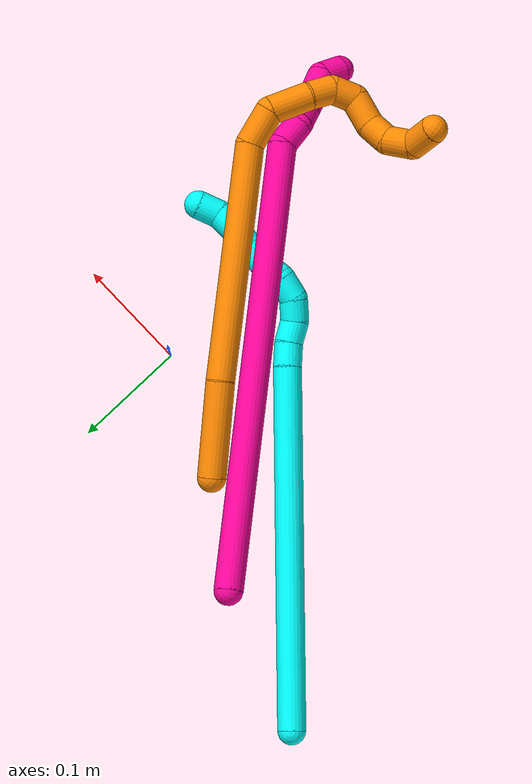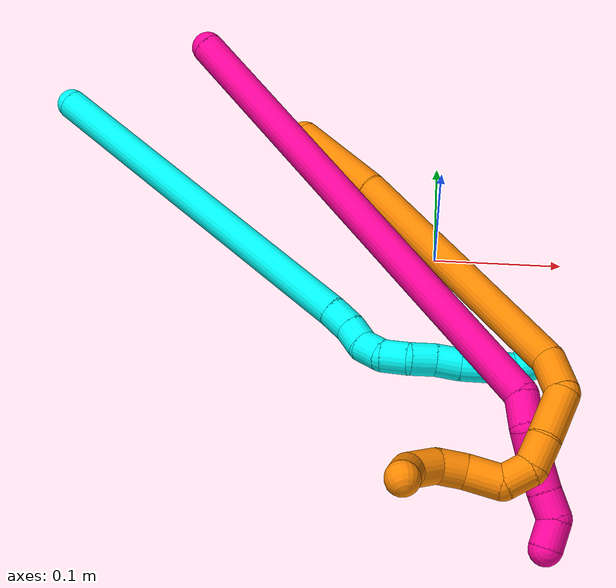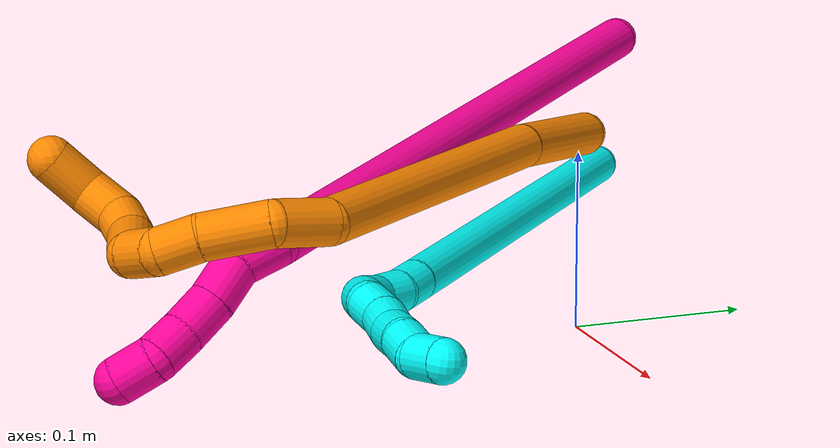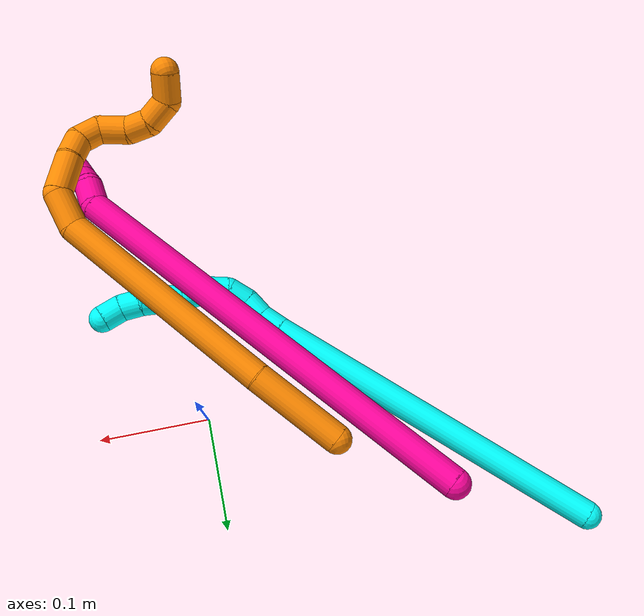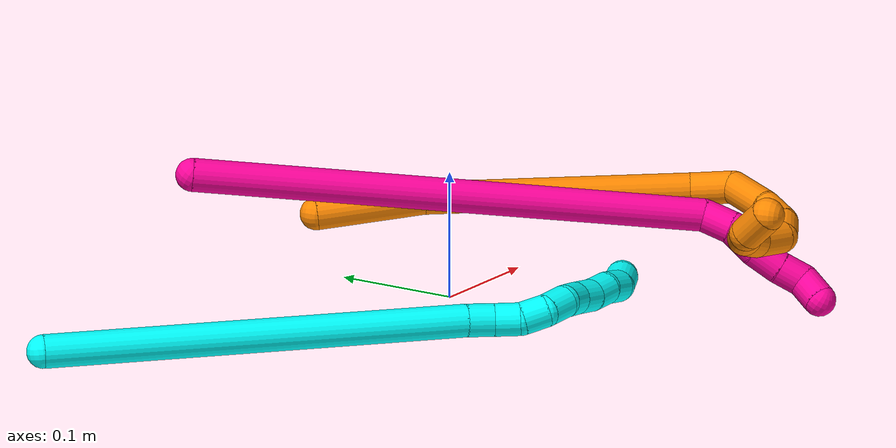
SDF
<sdf version="1.7">
 <world name="default">
  <model name="3">
   <static>0</static>
   <link name="3">
    <collision name="collision-cylinder-e_1_1_4">
     <pose>0.103792 -0.119219 -0.013858 1.68652 0.713011 0.792223</pose>
     <geometry><cylinder><radius>0.0125</radius><length>0.317352</length></cylinder></geometry>
     <surface>
      <friction><ode><mu>1.16</mu><mu2>1.16</mu2><slip1>0</slip1><slip2>0</slip2></ode></friction>
      <contact><ode><kp>1e+06</kp><kd>1</kd><max_vel>0</max_vel><min_depth>0.001</min_depth></ode></contact>
     </surface>
    </collision>
    <visual name="visual-cylinder-e_1_1_4">
     <pose>0.103792 -0.119219 -0.013858 1.68652 0.713011 0.792223</pose>
     <geometry><cylinder><radius>0.0125</radius><length>0.317352</length></cylinder></geometry>
     <material><ambient>0.003922 1 0.996078 1</ambient></material>
    </visual>
    <collision name="collision-cylinder-e_2_4_5">
     <pose>0.214078 -0.246793 -0.0291 1.73487 0.654177 0.761127</pose>
     <geometry><cylinder><radius>0.0125</radius><length>0.021343</length></cylinder></geometry>
     <surface>
      <friction><ode><mu>1.16</mu><mu2>1.16</mu2><slip1>0</slip1><slip2>0</slip2></ode></friction>
      <contact><ode><kp>1e+06</kp><kd>1</kd><max_vel>0</max_vel><min_depth>0.001</min_depth></ode></contact>
     </surface>
    </collision>
    <visual name="visual-cylinder-e_2_4_5">
     <pose>0.214078 -0.246793 -0.0291 1.73487 0.654177 0.761127</pose>
     <geometry><cylinder><radius>0.0125</radius><length>0.021343</length></cylinder></geometry>
     <material><ambient>0.003922 1 0.996078 1</ambient></material>
    </visual>
    <collision name="collision-cylinder-e_3_5_6">
     <pose>0.22475 -0.264287 -0.031201 1.64915 0.427617 0.461325</pose>
     <geometry><cylinder><radius>0.0125</radius><length>0.020149</length></cylinder></geometry>
     <surface>
      <friction><ode><mu>1.16</mu><mu2>1.16</mu2><slip1>0</slip1><slip2>0</slip2></ode></friction>
      <contact><ode><kp>1e+06</kp><kd>1</kd><max_vel>0</max_vel><min_depth>0.001</min_depth></ode></contact>
     </surface>
    </collision>
    <visual name="visual-cylinder-e_3_5_6">
     <pose>0.22475 -0.264287 -0.031201 1.64915 0.427617 0.461325</pose>
     <geometry><cylinder><radius>0.0125</radius><length>0.020149</length></cylinder></geometry>
     <material><ambient>0.003922 1 0.996078 1</ambient></material>
    </visual>
    <collision name="collision-cylinder-e_4_6_7">
     <pose>0.235564 -0.280767 -0.030282 1.35156 0.72298 0.588652</pose>
     <geometry><cylinder><radius>0.0125</radius><length>0.020061</length></cylinder></geometry>
     <surface>
      <friction><ode><mu>1.16</mu><mu2>1.16</mu2><slip1>0</slip1><slip2>0</slip2></ode></friction>
      <contact><ode><kp>1e+06</kp><kd>1</kd><max_vel>0</max_vel><min_depth>0.001</min_depth></ode></contact>
     </surface>
    </collision>
    <visual name="visual-cylinder-e_4_6_7">
     <pose>0.235564 -0.280767 -0.030282 1.35156 0.72298 0.588652</pose>
     <geometry><cylinder><radius>0.0125</radius><length>0.020061</length></cylinder></geometry>
     <material><ambient>0.003922 1 0.996078 1</ambient></material>
    </visual>
    <collision name="collision-cylinder-e_5_7_8">
     <pose>0.251975 -0.291421 -0.027395 1.20946 1.22318 0.902599</pose>
     <geometry><cylinder><radius>0.0125</radius><length>0.020793</length></cylinder></geometry>
     <surface>
      <friction><ode><mu>1.16</mu><mu2>1.16</mu2><slip1>0</slip1><slip2>0</slip2></ode></friction>
      <contact><ode><kp>1e+06</kp><kd>1</kd><max_vel>0</max_vel><min_depth>0.001</min_depth></ode></contact>
     </surface>
    </collision>
    <visual name="visual-cylinder-e_5_7_8">
     <pose>0.251975 -0.291421 -0.027395 1.20946 1.22318 0.902599</pose>
     <geometry><cylinder><radius>0.0125</radius><length>0.020793</length></cylinder></geometry>
     <material><ambient>0.003922 1 0.996078 1</ambient></material>
    </visual>
    <collision name="collision-cylinder-e_6_8_9">
     <pose>0.271683 -0.294533 -0.027293 -2.96883 1.45381 -2.94746</pose>
     <geometry><cylinder><radius>0.0125</radius><length>0.020005</length></cylinder></geometry>
     <surface>
      <friction><ode><mu>1.16</mu><mu2>1.16</mu2><slip1>0</slip1><slip2>0</slip2></ode></friction>
      <contact><ode><kp>1e+06</kp><kd>1</kd><max_vel>0</max_vel><min_depth>0.001</min_depth></ode></contact>
     </surface>
    </collision>
    <visual name="visual-cylinder-e_6_8_9">
     <pose>0.271683 -0.294533 -0.027293 -2.96883 1.45381 -2.94746</pose>
     <geometry><cylinder><radius>0.0125</radius><length>0.020005</length></cylinder></geometry>
     <material><ambient>0.003922 1 0.996078 1</ambient></material>
    </visual>
    <collision name="collision-cylinder-e_7_9_10">
     <pose>0.291396 -0.296148 -0.029616 2.14433 1.35322 1.9499</pose>
     <geometry><cylinder><radius>0.0125</radius><length>0.02003</length></cylinder></geometry>
     <surface>
      <friction><ode><mu>1.16</mu><mu2>1.16</mu2><slip1>0</slip1><slip2>0</slip2></ode></friction>
      <contact><ode><kp>1e+06</kp><kd>1</kd><max_vel>0</max_vel><min_depth>0.001</min_depth></ode></contact>
     </surface>
    </collision>
    <visual name="visual-cylinder-e_7_9_10">
     <pose>0.291396 -0.296148 -0.029616 2.14433 1.35322 1.9499</pose>
     <geometry><cylinder><radius>0.0125</radius><length>0.02003</length></cylinder></geometry>
     <material><ambient>0.003922 1 0.996078 1</ambient></material>
    </visual>
    <collision name="collision-cylinder-e_8_10_11">
     <pose>0.311008 -0.299788 -0.030199 1.2579 1.37823 1.07989</pose>
     <geometry><cylinder><radius>0.0125</radius><length>0.020036</length></cylinder></geometry>
     <surface>
      <friction><ode><mu>1.16</mu><mu2>1.16</mu2><slip1>0</slip1><slip2>0</slip2></ode></friction>
      <contact><ode><kp>1e+06</kp><kd>1</kd><max_vel>0</max_vel><min_depth>0.001</min_depth></ode></contact>
     </surface>
    </collision>
    <visual name="visual-cylinder-e_8_10_11">
     <pose>0.311008 -0.299788 -0.030199 1.2579 1.37823 1.07989</pose>
     <geometry><cylinder><radius>0.0125</radius><length>0.020036</length></cylinder></geometry>
     <material><ambient>0.003922 1 0.996078 1</ambient></material>
    </visual>
    <collision name="collision-cylinder-e_9_11_12">
     <pose>0.33073 -0.302245 -0.031043 2.72669 1.41356 2.65827</pose>
     <geometry><cylinder><radius>0.0125</radius><length>0.020026</length></cylinder></geometry>
     <surface>
      <friction><ode><mu>1.16</mu><mu2>1.16</mu2><slip1>0</slip1><slip2>0</slip2></ode></friction>
      <contact><ode><kp>1e+06</kp><kd>1</kd><max_vel>0</max_vel><min_depth>0.001</min_depth></ode></contact>
     </surface>
    </collision>
    <visual name="visual-cylinder-e_9_11_12">
     <pose>0.33073 -0.302245 -0.031043 2.72669 1.41356 2.65827</pose>
     <geometry><cylinder><radius>0.0125</radius><length>0.020026</length></cylinder></geometry>
     <material><ambient>0.003922 1 0.996078 1</ambient></material>
    </visual>
    <collision name="collision-cylinder-e_10_12_2">
     <pose>0.350244 -0.300232 -0.030911 -1.03581 1.26164 -0.788704</pose>
     <geometry><cylinder><radius>0.0125</radius><length>0.020206</length></cylinder></geometry>
     <surface>
      <friction><ode><mu>1.16</mu><mu2>1.16</mu2><slip1>0</slip1><slip2>0</slip2></ode></friction>
      <contact><ode><kp>1e+06</kp><kd>1</kd><max_vel>0</max_vel><min_depth>0.001</min_depth></ode></contact>
     </surface>
    </collision>
    <visual name="visual-cylinder-e_10_12_2">
     <pose>0.350244 -0.300232 -0.030911 -1.03581 1.26164 -0.788704</pose>
     <geometry><cylinder><radius>0.0125</radius><length>0.020206</length></cylinder></geometry>
     <material><ambient>0.003922 1 0.996078 1</ambient></material>
    </visual>
    <collision name="collision-sphere-2">
     <pose>0.359868 -0.297588 -0.029344 0 -0 0</pose>
     <geometry><sphere><radius>0.0125</radius></sphere></geometry>
     <surface>
      <friction><ode><mu>1.16</mu><mu2>1.16</mu2><slip1>0</slip1><slip2>0</slip2></ode></friction>
      <contact><ode><kp>1e+06</kp><kd>1</kd><max_vel>0</max_vel><min_depth>0.001</min_depth></ode></contact>
     </surface>
    </collision>
    <visual name="visual-sphere-2">
     <pose>0.359868 -0.297588 -0.029344 0 -0 0</pose>
     <geometry><sphere><radius>0.0125</radius></sphere></geometry>
     <material><ambient>0.003922 1 0.996078 1</ambient></material>
    </visual>
    <collision name="collision-sphere-12">
     <pose>0.340619 -0.302877 -0.032478 0 -0 0</pose>
     <geometry><sphere><radius>0.0125</radius></sphere></geometry>
     <surface>
      <friction><ode><mu>1.16</mu><mu2>1.16</mu2><slip1>0</slip1><slip2>0</slip2></ode></friction>
      <contact><ode><kp>1e+06</kp><kd>1</kd><max_vel>0</max_vel><min_depth>0.001</min_depth></ode></contact>
     </surface>
    </collision>
    <visual name="visual-sphere-12">
     <pose>0.340619 -0.302877 -0.032478 0 -0 0</pose>
     <geometry><sphere><radius>0.0125</radius></sphere></geometry>
     <material><ambient>0.003922 1 0.996078 1</ambient></material>
    </visual>
    <collision name="collision-sphere-11">
     <pose>0.320841 -0.301613 -0.029608 0 -0 0</pose>
     <geometry><sphere><radius>0.0125</radius></sphere></geometry>
     <surface>
      <friction><ode><mu>1.16</mu><mu2>1.16</mu2><slip1>0</slip1><slip2>0</slip2></ode></friction>
      <contact><ode><kp>1e+06</kp><kd>1</kd><max_vel>0</max_vel><min_depth>0.001</min_depth></ode></contact>
     </surface>
    </collision>
    <visual name="visual-sphere-11">
     <pose>0.320841 -0.301613 -0.029608 0 -0 0</pose>
     <geometry><sphere><radius>0.0125</radius></sphere></geometry>
     <material><ambient>0.003922 1 0.996078 1</ambient></material>
    </visual>
    <collision name="collision-sphere-10">
     <pose>0.301175 -0.297964 -0.030789 0 -0 0</pose>
     <geometry><sphere><radius>0.0125</radius></sphere></geometry>
     <surface>
      <friction><ode><mu>1.16</mu><mu2>1.16</mu2><slip1>0</slip1><slip2>0</slip2></ode></friction>
      <contact><ode><kp>1e+06</kp><kd>1</kd><max_vel>0</max_vel><min_depth>0.001</min_depth></ode></contact>
     </surface>
    </collision>
    <visual name="visual-sphere-10">
     <pose>0.301175 -0.297964 -0.030789 0 -0 0</pose>
     <geometry><sphere><radius>0.0125</radius></sphere></geometry>
     <material><ambient>0.003922 1 0.996078 1</ambient></material>
    </visual>
    <collision name="collision-sphere-9">
     <pose>0.281617 -0.294332 -0.028443 0 -0 0</pose>
     <geometry><sphere><radius>0.0125</radius></sphere></geometry>
     <surface>
      <friction><ode><mu>1.16</mu><mu2>1.16</mu2><slip1>0</slip1><slip2>0</slip2></ode></friction>
      <contact><ode><kp>1e+06</kp><kd>1</kd><max_vel>0</max_vel><min_depth>0.001</min_depth></ode></contact>
     </surface>
    </collision>
    <visual name="visual-sphere-9">
     <pose>0.281617 -0.294332 -0.028443 0 -0 0</pose>
     <geometry><sphere><radius>0.0125</radius></sphere></geometry>
     <material><ambient>0.003922 1 0.996078 1</ambient></material>
    </visual>
    <collision name="collision-sphere-4">
     <pose>0.207584 -0.238438 -0.027717 0 -0 0</pose>
     <geometry><sphere><radius>0.0125</radius></sphere></geometry>
     <surface>
      <friction><ode><mu>1.16</mu><mu2>1.16</mu2><slip1>0</slip1><slip2>0</slip2></ode></friction>
      <contact><ode><kp>1e+06</kp><kd>1</kd><max_vel>0</max_vel><min_depth>0.001</min_depth></ode></contact>
     </surface>
    </collision>
    <visual name="visual-sphere-4">
     <pose>0.207584 -0.238438 -0.027717 0 -0 0</pose>
     <geometry><sphere><radius>0.0125</radius></sphere></geometry>
     <material><ambient>0.003922 1 0.996078 1</ambient></material>
    </visual>
    <collision name="collision-sphere-1">
     <geometry><sphere><radius>0.0125</radius></sphere></geometry>
     <surface>
      <friction><ode><mu>1.16</mu><mu2>1.16</mu2><slip1>0</slip1><slip2>0</slip2></ode></friction>
      <contact><ode><kp>1e+06</kp><kd>1</kd><max_vel>0</max_vel><min_depth>0.001</min_depth></ode></contact>
     </surface>
    </collision>
    <visual name="visual-sphere-1">
     <geometry><sphere><radius>0.0125</radius></sphere></geometry>
     <material><ambient>0.003922 1 0.996078 1</ambient></material>
    </visual>
    <collision name="collision-sphere-8">
     <pose>0.261749 -0.294734 -0.026143 0 -0 0</pose>
     <geometry><sphere><radius>0.0125</radius></sphere></geometry>
     <surface>
      <friction><ode><mu>1.16</mu><mu2>1.16</mu2><slip1>0</slip1><slip2>0</slip2></ode></friction>
      <contact><ode><kp>1e+06</kp><kd>1</kd><max_vel>0</max_vel><min_depth>0.001</min_depth></ode></contact>
     </surface>
    </collision>
    <visual name="visual-sphere-8">
     <pose>0.261749 -0.294734 -0.026143 0 -0 0</pose>
     <geometry><sphere><radius>0.0125</radius></sphere></geometry>
     <material><ambient>0.003922 1 0.996078 1</ambient></material>
    </visual>
    <collision name="collision-sphere-5">
     <pose>0.220572 -0.255147 -0.030483 0 -0 0</pose>
     <geometry><sphere><radius>0.0125</radius></sphere></geometry>
     <surface>
      <friction><ode><mu>1.16</mu><mu2>1.16</mu2><slip1>0</slip1><slip2>0</slip2></ode></friction>
      <contact><ode><kp>1e+06</kp><kd>1</kd><max_vel>0</max_vel><min_depth>0.001</min_depth></ode></contact>
     </surface>
    </collision>
    <visual name="visual-sphere-5">
     <pose>0.220572 -0.255147 -0.030483 0 -0 0</pose>
     <geometry><sphere><radius>0.0125</radius></sphere></geometry>
     <material><ambient>0.003922 1 0.996078 1</ambient></material>
    </visual>
    <collision name="collision-sphere-6">
     <pose>0.228928 -0.273426 -0.031918 0 -0 0</pose>
     <geometry><sphere><radius>0.0125</radius></sphere></geometry>
     <surface>
      <friction><ode><mu>1.16</mu><mu2>1.16</mu2><slip1>0</slip1><slip2>0</slip2></ode></friction>
      <contact><ode><kp>1e+06</kp><kd>1</kd><max_vel>0</max_vel><min_depth>0.001</min_depth></ode></contact>
     </surface>
    </collision>
    <visual name="visual-sphere-6">
     <pose>0.228928 -0.273426 -0.031918 0 -0 0</pose>
     <geometry><sphere><radius>0.0125</radius></sphere></geometry>
     <material><ambient>0.003922 1 0.996078 1</ambient></material>
    </visual>
    <collision name="collision-sphere-7">
     <pose>0.2422 -0.288108 -0.028647 0 -0 0</pose>
     <geometry><sphere><radius>0.0125</radius></sphere></geometry>
     <surface>
      <friction><ode><mu>1.16</mu><mu2>1.16</mu2><slip1>0</slip1><slip2>0</slip2></ode></friction>
      <contact><ode><kp>1e+06</kp><kd>1</kd><max_vel>0</max_vel><min_depth>0.001</min_depth></ode></contact>
     </surface>
    </collision>
    <visual name="visual-sphere-7">
     <pose>0.2422 -0.288108 -0.028647 0 -0 0</pose>
     <geometry><sphere><radius>0.0125</radius></sphere></geometry>
     <material><ambient>0.003922 1 0.996078 1</ambient></material>
    </visual>
    <inertial>
     <pose>0.166408 -0.180137 -0.019631 0 -0 0</pose>
     <mass>0.5</mass>
     <inertia>
      <ixx>0.002897</ixx>
      <ixy>0</ixy>
      <ixz>0</ixz>
      <iyy>0.002451</iyy>
      <iyz>0</iyz>
      <izz>0.000251</izz>
     </inertia>
    </inertial>
   </link>
   <pose>-0.311854 0.148132 0.0113 -0.139849 0.023693 0.112541</pose>
  </model>
  <model name="18">
   <static>0</static>
   <link name="18">
    <collision name="collision-cylinder-e_1_1_4">
     <pose>0.09202 -0.155041 -0.070904 1.99972 0.494946 0.749543</pose>
     <geometry><cylinder><radius>0.0125</radius><length>0.387468</length></cylinder></geometry>
     <surface>
      <friction><ode><mu>1.16</mu><mu2>1.16</mu2><slip1>0</slip1><slip2>0</slip2></ode></friction>
      <contact><ode><kp>1e+06</kp><kd>1</kd><max_vel>0</max_vel><min_depth>0.001</min_depth></ode></contact>
     </surface>
    </collision>
    <visual name="visual-cylinder-e_1_1_4">
     <pose>0.09202 -0.155041 -0.070904 1.99972 0.494946 0.749543</pose>
     <geometry><cylinder><radius>0.0125</radius><length>0.387468</length></cylinder></geometry>
     <material><ambient>1 0.007843 0.615686 1</ambient></material>
    </visual>
    <collision name="collision-cylinder-e_2_4_5">
     <pose>0.194638 -0.315596 -0.144718 2.05638 1.03899 1.51789</pose>
     <geometry><cylinder><radius>0.0125</radius><length>0.02459</length></cylinder></geometry>
     <surface>
      <friction><ode><mu>1.16</mu><mu2>1.16</mu2><slip1>0</slip1><slip2>0</slip2></ode></friction>
      <contact><ode><kp>1e+06</kp><kd>1</kd><max_vel>0</max_vel><min_depth>0.001</min_depth></ode></contact>
     </surface>
    </collision>
    <visual name="visual-cylinder-e_2_4_5">
     <pose>0.194638 -0.315596 -0.144718 2.05638 1.03899 1.51789</pose>
     <geometry><cylinder><radius>0.0125</radius><length>0.02459</length></cylinder></geometry>
     <material><ambient>1 0.007843 0.615686 1</ambient></material>
    </visual>
    <collision name="collision-cylinder-e_3_5_6">
     <pose>0.214416 -0.328152 -0.144978 1.21095 0.884281 0.633322</pose>
     <geometry><cylinder><radius>0.0125</radius><length>0.023742</length></cylinder></geometry>
     <surface>
      <friction><ode><mu>1.16</mu><mu2>1.16</mu2><slip1>0</slip1><slip2>0</slip2></ode></friction>
      <contact><ode><kp>1e+06</kp><kd>1</kd><max_vel>0</max_vel><min_depth>0.001</min_depth></ode></contact>
     </surface>
    </collision>
    <visual name="visual-cylinder-e_3_5_6">
     <pose>0.214416 -0.328152 -0.144978 1.21095 0.884281 0.633322</pose>
     <geometry><cylinder><radius>0.0125</radius><length>0.023742</length></cylinder></geometry>
     <material><ambient>1 0.007843 0.615686 1</ambient></material>
    </visual>
    <collision name="collision-cylinder-e_4_6_7">
     <pose>0.23254 -0.342163 -0.141854 1.50288 0.907666 0.855233</pose>
     <geometry><cylinder><radius>0.0125</radius><length>0.022693</length></cylinder></geometry>
     <surface>
      <friction><ode><mu>1.16</mu><mu2>1.16</mu2><slip1>0</slip1><slip2>0</slip2></ode></friction>
      <contact><ode><kp>1e+06</kp><kd>1</kd><max_vel>0</max_vel><min_depth>0.001</min_depth></ode></contact>
     </surface>
    </collision>
    <visual name="visual-cylinder-e_4_6_7">
     <pose>0.23254 -0.342163 -0.141854 1.50288 0.907666 0.855233</pose>
     <geometry><cylinder><radius>0.0125</radius><length>0.022693</length></cylinder></geometry>
     <material><ambient>1 0.007843 0.615686 1</ambient></material>
    </visual>
    <collision name="collision-cylinder-e_5_7_8">
     <pose>0.249051 -0.35573 -0.142008 1.66565 0.851589 0.925273</pose>
     <geometry><cylinder><radius>0.0125</radius><length>0.020123</length></cylinder></geometry>
     <surface>
      <friction><ode><mu>1.16</mu><mu2>1.16</mu2><slip1>0</slip1><slip2>0</slip2></ode></friction>
      <contact><ode><kp>1e+06</kp><kd>1</kd><max_vel>0</max_vel><min_depth>0.001</min_depth></ode></contact>
     </surface>
    </collision>
    <visual name="visual-cylinder-e_5_7_8">
     <pose>0.249051 -0.35573 -0.142008 1.66565 0.851589 0.925273</pose>
     <geometry><cylinder><radius>0.0125</radius><length>0.020123</length></cylinder></geometry>
     <material><ambient>1 0.007843 0.615686 1</ambient></material>
    </visual>
    <collision name="collision-cylinder-e_6_8_2">
     <pose>0.267282 -0.362995 -0.14217 0.960858 1.49471 0.899809</pose>
     <geometry><cylinder><radius>0.0125</radius><length>0.021384</length></cylinder></geometry>
     <surface>
      <friction><ode><mu>1.16</mu><mu2>1.16</mu2><slip1>0</slip1><slip2>0</slip2></ode></friction>
      <contact><ode><kp>1e+06</kp><kd>1</kd><max_vel>0</max_vel><min_depth>0.001</min_depth></ode></contact>
     </surface>
    </collision>
    <visual name="visual-cylinder-e_6_8_2">
     <pose>0.267282 -0.362995 -0.14217 0.960858 1.49471 0.899809</pose>
     <geometry><cylinder><radius>0.0125</radius><length>0.021384</length></cylinder></geometry>
     <material><ambient>1 0.007843 0.615686 1</ambient></material>
    </visual>
    <collision name="collision-sphere-2">
     <pose>0.277944 -0.363661 -0.141705 0 -0 0</pose>
     <geometry><sphere><radius>0.0125</radius></sphere></geometry>
     <surface>
      <friction><ode><mu>1.16</mu><mu2>1.16</mu2><slip1>0</slip1><slip2>0</slip2></ode></friction>
      <contact><ode><kp>1e+06</kp><kd>1</kd><max_vel>0</max_vel><min_depth>0.001</min_depth></ode></contact>
     </surface>
    </collision>
    <visual name="visual-sphere-2">
     <pose>0.277944 -0.363661 -0.141705 0 -0 0</pose>
     <geometry><sphere><radius>0.0125</radius></sphere></geometry>
     <material><ambient>1 0.007843 0.615686 1</ambient></material>
    </visual>
    <collision name="collision-sphere-4">
     <pose>0.184041 -0.310082 -0.141808 0 -0 0</pose>
     <geometry><sphere><radius>0.0125</radius></sphere></geometry>
     <surface>
      <friction><ode><mu>1.16</mu><mu2>1.16</mu2><slip1>0</slip1><slip2>0</slip2></ode></friction>
      <contact><ode><kp>1e+06</kp><kd>1</kd><max_vel>0</max_vel><min_depth>0.001</min_depth></ode></contact>
     </surface>
    </collision>
    <visual name="visual-sphere-4">
     <pose>0.184041 -0.310082 -0.141808 0 -0 0</pose>
     <geometry><sphere><radius>0.0125</radius></sphere></geometry>
     <material><ambient>1 0.007843 0.615686 1</ambient></material>
    </visual>
    <collision name="collision-sphere-1">
     <geometry><sphere><radius>0.0125</radius></sphere></geometry>
     <surface>
      <friction><ode><mu>1.16</mu><mu2>1.16</mu2><slip1>0</slip1><slip2>0</slip2></ode></friction>
      <contact><ode><kp>1e+06</kp><kd>1</kd><max_vel>0</max_vel><min_depth>0.001</min_depth></ode></contact>
     </surface>
    </collision>
    <visual name="visual-sphere-1">
     <geometry><sphere><radius>0.0125</radius></sphere></geometry>
     <material><ambient>1 0.007843 0.615686 1</ambient></material>
    </visual>
    <collision name="collision-sphere-8">
     <pose>0.256621 -0.362329 -0.142636 0 -0 0</pose>
     <geometry><sphere><radius>0.0125</radius></sphere></geometry>
     <surface>
      <friction><ode><mu>1.16</mu><mu2>1.16</mu2><slip1>0</slip1><slip2>0</slip2></ode></friction>
      <contact><ode><kp>1e+06</kp><kd>1</kd><max_vel>0</max_vel><min_depth>0.001</min_depth></ode></contact>
     </surface>
    </collision>
    <visual name="visual-sphere-8">
     <pose>0.256621 -0.362329 -0.142636 0 -0 0</pose>
     <geometry><sphere><radius>0.0125</radius></sphere></geometry>
     <material><ambient>1 0.007843 0.615686 1</ambient></material>
    </visual>
    <collision name="collision-sphere-5">
     <pose>0.205235 -0.321109 -0.147627 0 -0 0</pose>
     <geometry><sphere><radius>0.0125</radius></sphere></geometry>
     <surface>
      <friction><ode><mu>1.16</mu><mu2>1.16</mu2><slip1>0</slip1><slip2>0</slip2></ode></friction>
      <contact><ode><kp>1e+06</kp><kd>1</kd><max_vel>0</max_vel><min_depth>0.001</min_depth></ode></contact>
     </surface>
    </collision>
    <visual name="visual-sphere-5">
     <pose>0.205235 -0.321109 -0.147627 0 -0 0</pose>
     <geometry><sphere><radius>0.0125</radius></sphere></geometry>
     <material><ambient>1 0.007843 0.615686 1</ambient></material>
    </visual>
    <collision name="collision-sphere-6">
     <pose>0.223598 -0.335194 -0.142328 0 -0 0</pose>
     <geometry><sphere><radius>0.0125</radius></sphere></geometry>
     <surface>
      <friction><ode><mu>1.16</mu><mu2>1.16</mu2><slip1>0</slip1><slip2>0</slip2></ode></friction>
      <contact><ode><kp>1e+06</kp><kd>1</kd><max_vel>0</max_vel><min_depth>0.001</min_depth></ode></contact>
     </surface>
    </collision>
    <visual name="visual-sphere-6">
     <pose>0.223598 -0.335194 -0.142328 0 -0 0</pose>
     <geometry><sphere><radius>0.0125</radius></sphere></geometry>
     <material><ambient>1 0.007843 0.615686 1</ambient></material>
    </visual>
    <collision name="collision-sphere-7">
     <pose>0.241482 -0.349131 -0.14138 0 -0 0</pose>
     <geometry><sphere><radius>0.0125</radius></sphere></geometry>
     <surface>
      <friction><ode><mu>1.16</mu><mu2>1.16</mu2><slip1>0</slip1><slip2>0</slip2></ode></friction>
      <contact><ode><kp>1e+06</kp><kd>1</kd><max_vel>0</max_vel><min_depth>0.001</min_depth></ode></contact>
     </surface>
    </collision>
    <visual name="visual-sphere-7">
     <pose>0.241482 -0.349131 -0.14138 0 -0 0</pose>
     <geometry><sphere><radius>0.0125</radius></sphere></geometry>
     <material><ambient>1 0.007843 0.615686 1</ambient></material>
    </visual>
    <inertial>
     <pose>0.123072 -0.196621 -0.087181 0 -0 0</pose>
     <mass>0.5</mass>
     <inertia>
      <ixx>0.006076</ixx>
      <ixy>0</ixy>
      <ixz>0</ixz>
      <iyy>0.002848</iyy>
      <iyz>0</iyz>
      <izz>0.001567</izz>
     </inertia>
    </inertial>
   </link>
   <pose>-0.187246 0.104824 0.123418 2.85834 0.485999 -1.9413</pose>
  </model>
  <model name="19">
   <static>0</static>
   <link name="19">
    <collision name="collision-cylinder-e_1_1_4">
     <pose>0.020421 -0.002636 0.035719 0.073654 0.518191 0.019531</pose>
     <geometry><cylinder><radius>0.0125</radius><length>0.082457</length></cylinder></geometry>
     <surface>
      <friction><ode><mu>1.16</mu><mu2>1.16</mu2><slip1>0</slip1><slip2>0</slip2></ode></friction>
      <contact><ode><kp>1e+06</kp><kd>1</kd><max_vel>0</max_vel><min_depth>0.001</min_depth></ode></contact>
     </surface>
    </collision>
    <visual name="visual-cylinder-e_1_1_4">
     <pose>0.020421 -0.002636 0.035719 0.073654 0.518191 0.019531</pose>
     <geometry><cylinder><radius>0.0125</radius><length>0.082457</length></cylinder></geometry>
     <material><ambient>0.996078 0.537255 0 1</ambient></material>
    </visual>
    <collision name="collision-cylinder-e_2_4_5">
     <pose>0.084874 -0.020321 0.162463 0.163858 0.445283 0.037176</pose>
     <geometry><cylinder><radius>0.0125</radius><length>0.20446</length></cylinder></geometry>
     <surface>
      <friction><ode><mu>1.16</mu><mu2>1.16</mu2><slip1>0</slip1><slip2>0</slip2></ode></friction>
      <contact><ode><kp>1e+06</kp><kd>1</kd><max_vel>0</max_vel><min_depth>0.001</min_depth></ode></contact>
     </surface>
    </collision>
    <visual name="visual-cylinder-e_2_4_5">
     <pose>0.084874 -0.020321 0.162463 0.163858 0.445283 0.037176</pose>
     <geometry><cylinder><radius>0.0125</radius><length>0.20446</length></cylinder></geometry>
     <material><ambient>0.996078 0.537255 0 1</ambient></material>
    </visual>
    <collision name="collision-cylinder-e_3_5_6">
     <pose>0.130727 -0.033307 0.269906 -0.125127 0.109664 -0.006877</pose>
     <geometry><cylinder><radius>0.0125</radius><length>0.033292</length></cylinder></geometry>
     <surface>
      <friction><ode><mu>1.16</mu><mu2>1.16</mu2><slip1>0</slip1><slip2>0</slip2></ode></friction>
      <contact><ode><kp>1e+06</kp><kd>1</kd><max_vel>0</max_vel><min_depth>0.001</min_depth></ode></contact>
     </surface>
    </collision>
    <visual name="visual-cylinder-e_3_5_6">
     <pose>0.130727 -0.033307 0.269906 -0.125127 0.109664 -0.006877</pose>
     <geometry><cylinder><radius>0.0125</radius><length>0.033292</length></cylinder></geometry>
     <material><ambient>0.996078 0.537255 0 1</ambient></material>
    </visual>
    <collision name="collision-cylinder-e_4_6_7">
     <pose>0.122217 -0.030117 0.301542 -0.073756 -0.595172 0.02263</pose>
     <geometry><cylinder><radius>0.0125</radius><length>0.036858</length></cylinder></geometry>
     <surface>
      <friction><ode><mu>1.16</mu><mu2>1.16</mu2><slip1>0</slip1><slip2>0</slip2></ode></friction>
      <contact><ode><kp>1e+06</kp><kd>1</kd><max_vel>0</max_vel><min_depth>0.001</min_depth></ode></contact>
     </surface>
    </collision>
    <visual name="visual-cylinder-e_4_6_7">
     <pose>0.122217 -0.030117 0.301542 -0.073756 -0.595172 0.02263</pose>
     <geometry><cylinder><radius>0.0125</radius><length>0.036858</length></cylinder></geometry>
     <material><ambient>0.996078 0.537255 0 1</ambient></material>
    </visual>
    <collision name="collision-cylinder-e_5_7_8">
     <pose>0.104554 -0.029739 0.325542 0.084819 -0.693791 -0.030679</pose>
     <geometry><cylinder><radius>0.0125</radius><length>0.022927</length></cylinder></geometry>
     <surface>
      <friction><ode><mu>1.16</mu><mu2>1.16</mu2><slip1>0</slip1><slip2>0</slip2></ode></friction>
      <contact><ode><kp>1e+06</kp><kd>1</kd><max_vel>0</max_vel><min_depth>0.001</min_depth></ode></contact>
     </surface>
    </collision>
    <visual name="visual-cylinder-e_5_7_8">
     <pose>0.104554 -0.029739 0.325542 0.084819 -0.693791 -0.030679</pose>
     <geometry><cylinder><radius>0.0125</radius><length>0.022927</length></cylinder></geometry>
     <material><ambient>0.996078 0.537255 0 1</ambient></material>
    </visual>
    <collision name="collision-cylinder-e_6_8_9">
     <pose>0.086948 -0.028777 0.336956 -0.575878 -1.27439 0.431616</pose>
     <geometry><cylinder><radius>0.0125</radius><length>0.021488</length></cylinder></geometry>
     <surface>
      <friction><ode><mu>1.16</mu><mu2>1.16</mu2><slip1>0</slip1><slip2>0</slip2></ode></friction>
      <contact><ode><kp>1e+06</kp><kd>1</kd><max_vel>0</max_vel><min_depth>0.001</min_depth></ode></contact>
     </surface>
    </collision>
    <visual name="visual-cylinder-e_6_8_9">
     <pose>0.086948 -0.028777 0.336956 -0.575878 -1.27439 0.431616</pose>
     <geometry><cylinder><radius>0.0125</radius><length>0.021488</length></cylinder></geometry>
     <material><ambient>0.996078 0.537255 0 1</ambient></material>
    </visual>
    <collision name="collision-cylinder-e_7_9_10">
     <pose>0.065918 -0.02164 0.333469 -2.41594 -0.920587 1.83468</pose>
     <geometry><cylinder><radius>0.0125</radius><length>0.027025</length></cylinder></geometry>
     <surface>
      <friction><ode><mu>1.16</mu><mu2>1.16</mu2><slip1>0</slip1><slip2>0</slip2></ode></friction>
      <contact><ode><kp>1e+06</kp><kd>1</kd><max_vel>0</max_vel><min_depth>0.001</min_depth></ode></contact>
     </surface>
    </collision>
    <visual name="visual-cylinder-e_7_9_10">
     <pose>0.065918 -0.02164 0.333469 -2.41594 -0.920587 1.83468</pose>
     <geometry><cylinder><radius>0.0125</radius><length>0.027025</length></cylinder></geometry>
     <material><ambient>0.996078 0.537255 0 1</ambient></material>
    </visual>
    <collision name="collision-cylinder-e_8_10_11">
     <pose>0.047377 -0.009501 0.325487 -1.84154 -0.841006 1.06339</pose>
     <geometry><cylinder><radius>0.0125</radius><length>0.02089</length></cylinder></geometry>
     <surface>
      <friction><ode><mu>1.16</mu><mu2>1.16</mu2><slip1>0</slip1><slip2>0</slip2></ode></friction>
      <contact><ode><kp>1e+06</kp><kd>1</kd><max_vel>0</max_vel><min_depth>0.001</min_depth></ode></contact>
     </surface>
    </collision>
    <visual name="visual-cylinder-e_8_10_11">
     <pose>0.047377 -0.009501 0.325487 -1.84154 -0.841006 1.06339</pose>
     <geometry><cylinder><radius>0.0125</radius><length>0.02089</length></cylinder></geometry>
     <material><ambient>0.996078 0.537255 0 1</ambient></material>
    </visual>
    <collision name="collision-cylinder-e_9_11_12">
     <pose>0.031922 0.00601 0.327149 -1.18994 -0.680255 0.47014</pose>
     <geometry><cylinder><radius>0.0125</radius><length>0.024389</length></cylinder></geometry>
     <surface>
      <friction><ode><mu>1.16</mu><mu2>1.16</mu2><slip1>0</slip1><slip2>0</slip2></ode></friction>
      <contact><ode><kp>1e+06</kp><kd>1</kd><max_vel>0</max_vel><min_depth>0.001</min_depth></ode></contact>
     </surface>
    </collision>
    <visual name="visual-cylinder-e_9_11_12">
     <pose>0.031922 0.00601 0.327149 -1.18994 -0.680255 0.47014</pose>
     <geometry><cylinder><radius>0.0125</radius><length>0.024389</length></cylinder></geometry>
     <material><ambient>0.996078 0.537255 0 1</ambient></material>
    </visual>
    <collision name="collision-cylinder-e_10_12_2">
     <pose>0.024407 0.024849 0.339098 -0.872553 0.011846 -0.005523</pose>
     <geometry><cylinder><radius>0.0125</radius><length>0.026213</length></cylinder></geometry>
     <surface>
      <friction><ode><mu>1.16</mu><mu2>1.16</mu2><slip1>0</slip1><slip2>0</slip2></ode></friction>
      <contact><ode><kp>1e+06</kp><kd>1</kd><max_vel>0</max_vel><min_depth>0.001</min_depth></ode></contact>
     </surface>
    </collision>
    <visual name="visual-cylinder-e_10_12_2">
     <pose>0.024407 0.024849 0.339098 -0.872553 0.011846 -0.005523</pose>
     <geometry><cylinder><radius>0.0125</radius><length>0.026213</length></cylinder></geometry>
     <material><ambient>0.996078 0.537255 0 1</ambient></material>
    </visual>
    <collision name="collision-sphere-2">
     <pose>0.024562 0.034888 0.347523 0 -0 0</pose>
     <geometry><sphere><radius>0.0125</radius></sphere></geometry>
     <surface>
      <friction><ode><mu>1.16</mu><mu2>1.16</mu2><slip1>0</slip1><slip2>0</slip2></ode></friction>
      <contact><ode><kp>1e+06</kp><kd>1</kd><max_vel>0</max_vel><min_depth>0.001</min_depth></ode></contact>
     </surface>
    </collision>
    <visual name="visual-sphere-2">
     <pose>0.024562 0.034888 0.347523 0 -0 0</pose>
     <geometry><sphere><radius>0.0125</radius></sphere></geometry>
     <material><ambient>0.996078 0.537255 0 1</ambient></material>
    </visual>
    <collision name="collision-sphere-12">
     <pose>0.024252 0.014811 0.330673 0 -0 0</pose>
     <geometry><sphere><radius>0.0125</radius></sphere></geometry>
     <surface>
      <friction><ode><mu>1.16</mu><mu2>1.16</mu2><slip1>0</slip1><slip2>0</slip2></ode></friction>
      <contact><ode><kp>1e+06</kp><kd>1</kd><max_vel>0</max_vel><min_depth>0.001</min_depth></ode></contact>
     </surface>
    </collision>
    <visual name="visual-sphere-12">
     <pose>0.024252 0.014811 0.330673 0 -0 0</pose>
     <geometry><sphere><radius>0.0125</radius></sphere></geometry>
     <material><ambient>0.996078 0.537255 0 1</ambient></material>
    </visual>
    <collision name="collision-sphere-11">
     <pose>0.039592 -0.002791 0.323625 0 -0 0</pose>
     <geometry><sphere><radius>0.0125</radius></sphere></geometry>
     <surface>
      <friction><ode><mu>1.16</mu><mu2>1.16</mu2><slip1>0</slip1><slip2>0</slip2></ode></friction>
      <contact><ode><kp>1e+06</kp><kd>1</kd><max_vel>0</max_vel><min_depth>0.001</min_depth></ode></contact>
     </surface>
    </collision>
    <visual name="visual-sphere-11">
     <pose>0.039592 -0.002791 0.323625 0 -0 0</pose>
     <geometry><sphere><radius>0.0125</radius></sphere></geometry>
     <material><ambient>0.996078 0.537255 0 1</ambient></material>
    </visual>
    <collision name="collision-sphere-10">
     <pose>0.055162 -0.016211 0.32735 0 -0 0</pose>
     <geometry><sphere><radius>0.0125</radius></sphere></geometry>
     <surface>
      <friction><ode><mu>1.16</mu><mu2>1.16</mu2><slip1>0</slip1><slip2>0</slip2></ode></friction>
      <contact><ode><kp>1e+06</kp><kd>1</kd><max_vel>0</max_vel><min_depth>0.001</min_depth></ode></contact>
     </surface>
    </collision>
    <visual name="visual-sphere-10">
     <pose>0.055162 -0.016211 0.32735 0 -0 0</pose>
     <geometry><sphere><radius>0.0125</radius></sphere></geometry>
     <material><ambient>0.996078 0.537255 0 1</ambient></material>
    </visual>
    <collision name="collision-sphere-9">
     <pose>0.076673 -0.027068 0.339588 0 -0 0</pose>
     <geometry><sphere><radius>0.0125</radius></sphere></geometry>
     <surface>
      <friction><ode><mu>1.16</mu><mu2>1.16</mu2><slip1>0</slip1><slip2>0</slip2></ode></friction>
      <contact><ode><kp>1e+06</kp><kd>1</kd><max_vel>0</max_vel><min_depth>0.001</min_depth></ode></contact>
     </surface>
    </collision>
    <visual name="visual-sphere-9">
     <pose>0.076673 -0.027068 0.339588 0 -0 0</pose>
     <geometry><sphere><radius>0.0125</radius></sphere></geometry>
     <material><ambient>0.996078 0.537255 0 1</ambient></material>
    </visual>
    <collision name="collision-sphere-4">
     <pose>0.040842 -0.005271 0.071438 0 -0 0</pose>
     <geometry><sphere><radius>0.0125</radius></sphere></geometry>
     <surface>
      <friction><ode><mu>1.16</mu><mu2>1.16</mu2><slip1>0</slip1><slip2>0</slip2></ode></friction>
      <contact><ode><kp>1e+06</kp><kd>1</kd><max_vel>0</max_vel><min_depth>0.001</min_depth></ode></contact>
     </surface>
    </collision>
    <visual name="visual-sphere-4">
     <pose>0.040842 -0.005271 0.071438 0 -0 0</pose>
     <geometry><sphere><radius>0.0125</radius></sphere></geometry>
     <material><ambient>0.996078 0.537255 0 1</ambient></material>
    </visual>
    <collision name="collision-sphere-1">
     <geometry><sphere><radius>0.0125</radius></sphere></geometry>
     <surface>
      <friction><ode><mu>1.16</mu><mu2>1.16</mu2><slip1>0</slip1><slip2>0</slip2></ode></friction>
      <contact><ode><kp>1e+06</kp><kd>1</kd><max_vel>0</max_vel><min_depth>0.001</min_depth></ode></contact>
     </surface>
    </collision>
    <visual name="visual-sphere-1">
     <geometry><sphere><radius>0.0125</radius></sphere></geometry>
     <material><ambient>0.996078 0.537255 0 1</ambient></material>
    </visual>
    <collision name="collision-sphere-8">
     <pose>0.097223 -0.030486 0.334324 0 -0 0</pose>
     <geometry><sphere><radius>0.0125</radius></sphere></geometry>
     <surface>
      <friction><ode><mu>1.16</mu><mu2>1.16</mu2><slip1>0</slip1><slip2>0</slip2></ode></friction>
      <contact><ode><kp>1e+06</kp><kd>1</kd><max_vel>0</max_vel><min_depth>0.001</min_depth></ode></contact>
     </surface>
    </collision>
    <visual name="visual-sphere-8">
     <pose>0.097223 -0.030486 0.334324 0 -0 0</pose>
     <geometry><sphere><radius>0.0125</radius></sphere></geometry>
     <material><ambient>0.996078 0.537255 0 1</ambient></material>
    </visual>
    <collision name="collision-sphere-5">
     <pose>0.128905 -0.035372 0.253489 0 -0 0</pose>
     <geometry><sphere><radius>0.0125</radius></sphere></geometry>
     <surface>
      <friction><ode><mu>1.16</mu><mu2>1.16</mu2><slip1>0</slip1><slip2>0</slip2></ode></friction>
      <contact><ode><kp>1e+06</kp><kd>1</kd><max_vel>0</max_vel><min_depth>0.001</min_depth></ode></contact>
     </surface>
    </collision>
    <visual name="visual-sphere-5">
     <pose>0.128905 -0.035372 0.253489 0 -0 0</pose>
     <geometry><sphere><radius>0.0125</radius></sphere></geometry>
     <material><ambient>0.996078 0.537255 0 1</ambient></material>
    </visual>
    <collision name="collision-sphere-6">
     <pose>0.132549 -0.031242 0.286323 0 -0 0</pose>
     <geometry><sphere><radius>0.0125</radius></sphere></geometry>
     <surface>
      <friction><ode><mu>1.16</mu><mu2>1.16</mu2><slip1>0</slip1><slip2>0</slip2></ode></friction>
      <contact><ode><kp>1e+06</kp><kd>1</kd><max_vel>0</max_vel><min_depth>0.001</min_depth></ode></contact>
     </surface>
    </collision>
    <visual name="visual-sphere-6">
     <pose>0.132549 -0.031242 0.286323 0 -0 0</pose>
     <geometry><sphere><radius>0.0125</radius></sphere></geometry>
     <material><ambient>0.996078 0.537255 0 1</ambient></material>
    </visual>
    <collision name="collision-sphere-7">
     <pose>0.111884 -0.028993 0.31676 0 -0 0</pose>
     <geometry><sphere><radius>0.0125</radius></sphere></geometry>
     <surface>
      <friction><ode><mu>1.16</mu><mu2>1.16</mu2><slip1>0</slip1><slip2>0</slip2></ode></friction>
      <contact><ode><kp>1e+06</kp><kd>1</kd><max_vel>0</max_vel><min_depth>0.001</min_depth></ode></contact>
     </surface>
    </collision>
    <visual name="visual-sphere-7">
     <pose>0.111884 -0.028993 0.31676 0 -0 0</pose>
     <geometry><sphere><radius>0.0125</radius></sphere></geometry>
     <material><ambient>0.996078 0.537255 0 1</ambient></material>
    </visual>
    <inertial>
     <pose>0.072698 -0.015753 0.207292 0 -0 0</pose>
     <mass>0.5</mass>
     <inertia>
      <ixx>0.000738</ixx>
      <ixy>0</ixy>
      <ixz>0</ixz>
      <iyy>0.000812</iyy>
      <iyz>0</iyz>
      <izz>-0.000195</izz>
     </inertia>
    </inertial>
   </link>
   <pose>-0.107142 0.049576 0.083906 1.60619 -0.409573 0.207511</pose>
  </model>
 </world>
</sdf>
